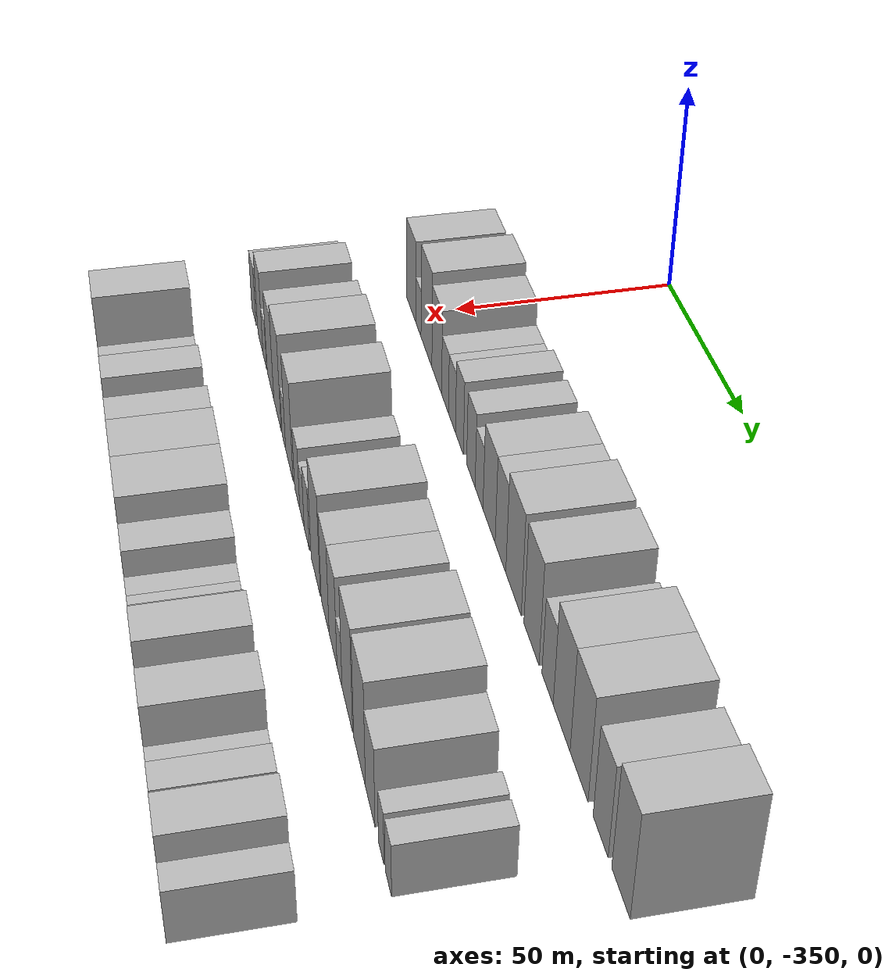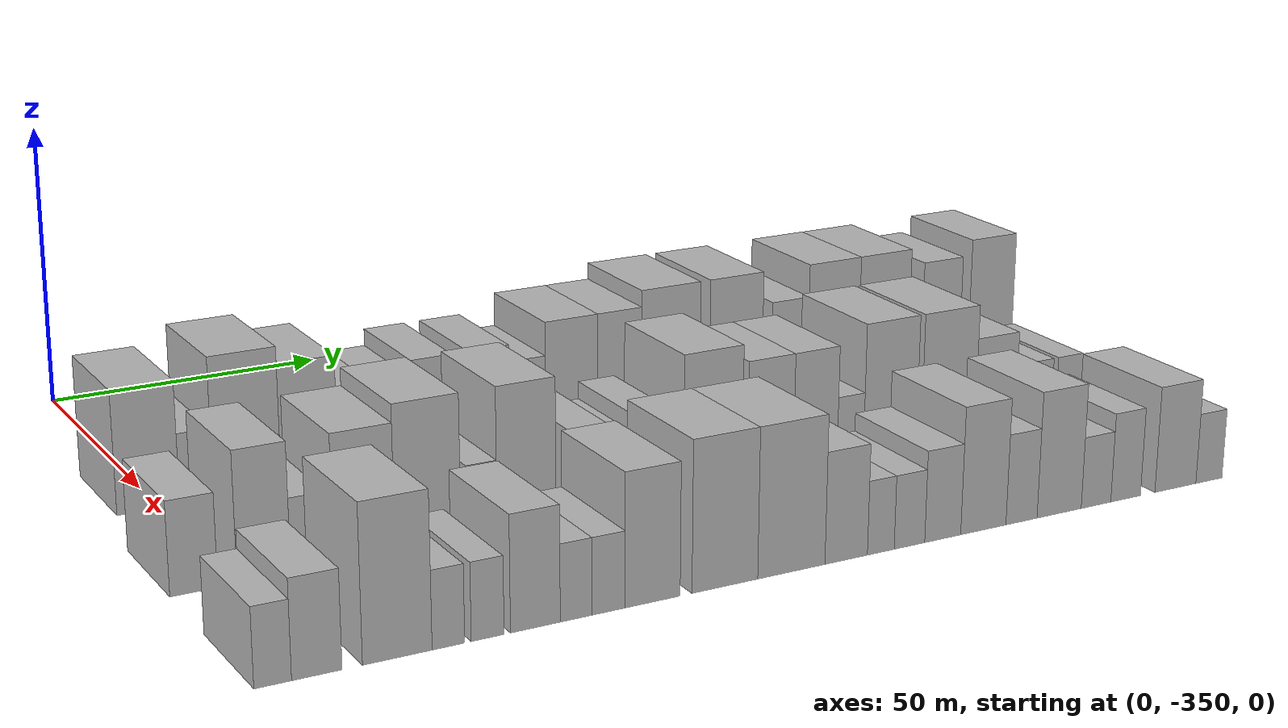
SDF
<sdf version="1.6">
 <world name="default">
  <model name="building_1">
   <static>1</static>
   <pose>50.0000 -351.7952 0 0.000000 0.000000 0.000000</pose>
   <link name="link">
    <pose>0 0 10.50 0 0 0</pose>
    <collision name="collision"><geometry><box><size>20.0000 10.4095 21.0000</size></box></geometry></collision>
    <visual name="visual">
     <cast_shadows>0</cast_shadows>
     <geometry><box><size>20.0000 10.4095 21.0000</size></box></geometry>
     <material>
      <script>
       <uri>model://HANNAS_wall/materials/scripts</uri>
       <uri>model://HANNAS_wall/materials/textures</uri>
       <name>vrc/HANNAS_wall</name>
      </script>
     </material>
    </visual>
   </link>
  </model>
  <model name="building_2">
   <static>1</static>
   <pose>50.0000 -343.7578 0 0.000000 0.000000 0.000000</pose>
   <link name="link">
    <pose>0 0 6.00 0 0 0</pose>
    <collision name="collision"><geometry><box><size>20.0000 5.6654 12.0000</size></box></geometry></collision>
    <visual name="visual">
     <cast_shadows>0</cast_shadows>
     <geometry><box><size>20.0000 5.6654 12.0000</size></box></geometry>
     <material>
      <script>
       <uri>model://HANNAS_wall/materials/scripts</uri>
       <uri>model://HANNAS_wall/materials/textures</uri>
       <name>vrc/HANNAS_wall</name>
      </script>
     </material>
    </visual>
   </link>
  </model>
  <model name="building_3">
   <static>1</static>
   <pose>50.0000 -335.0995 0 0.000000 0.000000 0.000000</pose>
   <link name="link">
    <pose>0 0 12.00 0 0 0</pose>
    <collision name="collision"><geometry><box><size>20.0000 11.6511 24.0000</size></box></geometry></collision>
    <visual name="visual">
     <cast_shadows>0</cast_shadows>
     <geometry><box><size>20.0000 11.6511 24.0000</size></box></geometry>
     <material>
      <script>
       <uri>model://HANNAS_wall/materials/scripts</uri>
       <uri>model://HANNAS_wall/materials/textures</uri>
       <name>vrc/HANNAS_wall</name>
      </script>
     </material>
    </visual>
   </link>
  </model>
  <model name="building_4">
   <static>1</static>
   <pose>50.0000 -324.2634 0 0.000000 0.000000 0.000000</pose>
   <link name="link">
    <pose>0 0 10.50 0 0 0</pose>
    <collision name="collision"><geometry><box><size>20.0000 10.0211 21.0000</size></box></geometry></collision>
    <visual name="visual">
     <cast_shadows>0</cast_shadows>
     <geometry><box><size>20.0000 10.0211 21.0000</size></box></geometry>
     <material>
      <script>
       <uri>model://HANNAS_wall/materials/scripts</uri>
       <uri>model://HANNAS_wall/materials/textures</uri>
       <name>vrc/HANNAS_wall</name>
      </script>
     </material>
    </visual>
   </link>
  </model>
  <model name="building_5">
   <static>1</static>
   <pose>50.0000 -315.8424 0 0.000000 0.000000 0.000000</pose>
   <link name="link">
    <pose>0 0 7.50 0 0 0</pose>
    <collision name="collision"><geometry><box><size>20.0000 6.8208 15.0000</size></box></geometry></collision>
    <visual name="visual">
     <cast_shadows>0</cast_shadows>
     <geometry><box><size>20.0000 6.8208 15.0000</size></box></geometry>
     <material>
      <script>
       <uri>model://HANNAS_wall/materials/scripts</uri>
       <uri>model://HANNAS_wall/materials/textures</uri>
       <name>vrc/HANNAS_wall</name>
      </script>
     </material>
    </visual>
   </link>
  </model>
  <model name="building_6">
   <static>1</static>
   <pose>50.0000 -309.0716 0 0.000000 0.000000 0.000000</pose>
   <link name="link">
    <pose>0 0 7.50 0 0 0</pose>
    <collision name="collision"><geometry><box><size>20.0000 6.7209 15.0000</size></box></geometry></collision>
    <visual name="visual">
     <cast_shadows>0</cast_shadows>
     <geometry><box><size>20.0000 6.7209 15.0000</size></box></geometry>
     <material>
      <script>
       <uri>model://HANNAS_wall/materials/scripts</uri>
       <uri>model://HANNAS_wall/materials/textures</uri>
       <name>vrc/HANNAS_wall</name>
      </script>
     </material>
    </visual>
   </link>
  </model>
  <model name="building_7">
   <static>1</static>
   <pose>50.0000 -301.9825 0 0.000000 0.000000 0.000000</pose>
   <link name="link">
    <pose>0 0 9.00 0 0 0</pose>
    <collision name="collision"><geometry><box><size>20.0000 7.4573 18.0000</size></box></geometry></collision>
    <visual name="visual">
     <cast_shadows>0</cast_shadows>
     <geometry><box><size>20.0000 7.4573 18.0000</size></box></geometry>
     <material>
      <script>
       <uri>model://HANNAS_wall/materials/scripts</uri>
       <uri>model://HANNAS_wall/materials/textures</uri>
       <name>vrc/HANNAS_wall</name>
      </script>
     </material>
    </visual>
   </link>
  </model>
  <model name="building_8">
   <static>1</static>
   <pose>50.0000 -291.4429 0 0.000000 0.000000 0.000000</pose>
   <link name="link">
    <pose>0 0 9.00 0 0 0</pose>
    <collision name="collision"><geometry><box><size>20.0000 7.6219 18.0000</size></box></geometry></collision>
    <visual name="visual">
     <cast_shadows>0</cast_shadows>
     <geometry><box><size>20.0000 7.6219 18.0000</size></box></geometry>
     <material>
      <script>
       <uri>model://HANNAS_wall/materials/scripts</uri>
       <uri>model://HANNAS_wall/materials/textures</uri>
       <name>vrc/HANNAS_wall</name>
      </script>
     </material>
    </visual>
   </link>
  </model>
  <model name="building_9">
   <static>1</static>
   <pose>50.0000 -284.2054 0 0.000000 0.000000 0.000000</pose>
   <link name="link">
    <pose>0 0 7.50 0 0 0</pose>
    <collision name="collision"><geometry><box><size>20.0000 6.8531 15.0000</size></box></geometry></collision>
    <visual name="visual">
     <cast_shadows>0</cast_shadows>
     <geometry><box><size>20.0000 6.8531 15.0000</size></box></geometry>
     <material>
      <script>
       <uri>model://HANNAS_wall/materials/scripts</uri>
       <uri>model://HANNAS_wall/materials/textures</uri>
       <name>vrc/HANNAS_wall</name>
      </script>
     </material>
    </visual>
   </link>
  </model>
  <model name="building_10">
   <static>1</static>
   <pose>50.0000 -275.6748 0 0.000000 0.000000 0.000000</pose>
   <link name="link">
    <pose>0 0 10.50 0 0 0</pose>
    <collision name="collision"><geometry><box><size>20.0000 10.2080 21.0000</size></box></geometry></collision>
    <visual name="visual">
     <cast_shadows>0</cast_shadows>
     <geometry><box><size>20.0000 10.2080 21.0000</size></box></geometry>
     <material>
      <script>
       <uri>model://HANNAS_wall/materials/scripts</uri>
       <uri>model://HANNAS_wall/materials/textures</uri>
       <name>vrc/HANNAS_wall</name>
      </script>
     </material>
    </visual>
   </link>
  </model>
  <model name="building_11">
   <static>1</static>
   <pose>50.0000 -266.2556 0 0.000000 0.000000 0.000000</pose>
   <link name="link">
    <pose>0 0 10.50 0 0 0</pose>
    <collision name="collision"><geometry><box><size>20.0000 8.6305 21.0000</size></box></geometry></collision>
    <visual name="visual">
     <cast_shadows>0</cast_shadows>
     <geometry><box><size>20.0000 8.6305 21.0000</size></box></geometry>
     <material>
      <script>
       <uri>model://HANNAS_wall/materials/scripts</uri>
       <uri>model://HANNAS_wall/materials/textures</uri>
       <name>vrc/HANNAS_wall</name>
      </script>
     </material>
    </visual>
   </link>
  </model>
  <model name="building_12">
   <static>1</static>
   <pose>50.0000 -255.9989 0 0.000000 0.000000 0.000000</pose>
   <link name="link">
    <pose>0 0 12.00 0 0 0</pose>
    <collision name="collision"><geometry><box><size>20.0000 11.8830 24.0000</size></box></geometry></collision>
    <visual name="visual">
     <cast_shadows>0</cast_shadows>
     <geometry><box><size>20.0000 11.8830 24.0000</size></box></geometry>
     <material>
      <script>
       <uri>model://HANNAS_wall/materials/scripts</uri>
       <uri>model://HANNAS_wall/materials/textures</uri>
       <name>vrc/HANNAS_wall</name>
      </script>
     </material>
    </visual>
   </link>
  </model>
  <model name="building_13">
   <static>1</static>
   <pose>50.0000 -242.5805 0 0.000000 0.000000 0.000000</pose>
   <link name="link">
    <pose>0 0 12.00 0 0 0</pose>
    <collision name="collision"><geometry><box><size>20.0000 10.9537 24.0000</size></box></geometry></collision>
    <visual name="visual">
     <cast_shadows>0</cast_shadows>
     <geometry><box><size>20.0000 10.9537 24.0000</size></box></geometry>
     <material>
      <script>
       <uri>model://HANNAS_wall/materials/scripts</uri>
       <uri>model://HANNAS_wall/materials/textures</uri>
       <name>vrc/HANNAS_wall</name>
      </script>
     </material>
    </visual>
   </link>
  </model>
  <model name="building_14">
   <static>1</static>
   <pose>50.0000 -231.2378 0 0.000000 0.000000 0.000000</pose>
   <link name="link">
    <pose>0 0 9.00 0 0 0</pose>
    <collision name="collision"><geometry><box><size>20.0000 7.7319 18.0000</size></box></geometry></collision>
    <visual name="visual">
     <cast_shadows>0</cast_shadows>
     <geometry><box><size>20.0000 7.7319 18.0000</size></box></geometry>
     <material>
      <script>
       <uri>model://HANNAS_wall/materials/scripts</uri>
       <uri>model://HANNAS_wall/materials/textures</uri>
       <name>vrc/HANNAS_wall</name>
      </script>
     </material>
    </visual>
   </link>
  </model>
  <model name="building_15">
   <static>1</static>
   <pose>50.0000 -221.8529 0 0.000000 0.000000 0.000000</pose>
   <link name="link">
    <pose>0 0 12.00 0 0 0</pose>
    <collision name="collision"><geometry><box><size>20.0000 11.0380 24.0000</size></box></geometry></collision>
    <visual name="visual">
     <cast_shadows>0</cast_shadows>
     <geometry><box><size>20.0000 11.0380 24.0000</size></box></geometry>
     <material>
      <script>
       <uri>model://HANNAS_wall/materials/scripts</uri>
       <uri>model://HANNAS_wall/materials/textures</uri>
       <name>vrc/HANNAS_wall</name>
      </script>
     </material>
    </visual>
   </link>
  </model>
  <model name="building_16">
   <static>1</static>
   <pose>50.0000 -210.7647 0 0.000000 0.000000 0.000000</pose>
   <link name="link">
    <pose>0 0 12.00 0 0 0</pose>
    <collision name="collision"><geometry><box><size>20.0000 11.1383 24.0000</size></box></geometry></collision>
    <visual name="visual">
     <cast_shadows>0</cast_shadows>
     <geometry><box><size>20.0000 11.1383 24.0000</size></box></geometry>
     <material>
      <script>
       <uri>model://HANNAS_wall/materials/scripts</uri>
       <uri>model://HANNAS_wall/materials/textures</uri>
       <name>vrc/HANNAS_wall</name>
      </script>
     </material>
    </visual>
   </link>
  </model>
  <model name="building_17">
   <static>1</static>
   <pose>50.0000 -197.8496 0 0.000000 0.000000 0.000000</pose>
   <link name="link">
    <pose>0 0 10.50 0 0 0</pose>
    <collision name="collision"><geometry><box><size>20.0000 8.6920 21.0000</size></box></geometry></collision>
    <visual name="visual">
     <cast_shadows>0</cast_shadows>
     <geometry><box><size>20.0000 8.6920 21.0000</size></box></geometry>
     <material>
      <script>
       <uri>model://HANNAS_wall/materials/scripts</uri>
       <uri>model://HANNAS_wall/materials/textures</uri>
       <name>vrc/HANNAS_wall</name>
      </script>
     </material>
    </visual>
   </link>
  </model>
  <model name="building_18">
   <static>1</static>
   <pose>50.0000 -186.4516 0 0.000000 0.000000 0.000000</pose>
   <link name="link">
    <pose>0 0 12.00 0 0 0</pose>
    <collision name="collision"><geometry><box><size>20.0000 10.1040 24.0000</size></box></geometry></collision>
    <visual name="visual">
     <cast_shadows>0</cast_shadows>
     <geometry><box><size>20.0000 10.1040 24.0000</size></box></geometry>
     <material>
      <script>
       <uri>model://HANNAS_wall/materials/scripts</uri>
       <uri>model://HANNAS_wall/materials/textures</uri>
       <name>vrc/HANNAS_wall</name>
      </script>
     </material>
    </visual>
   </link>
  </model>
  <model name="building_79">
   <static>1</static>
   <pose>85.0000 -356.3077 0 0.000000 0.000000 0.000000</pose>
   <link name="link">
    <pose>0 0 7.50 0 0 0</pose>
    <collision name="collision"><geometry><box><size>20.0000 7.3847 15.0000</size></box></geometry></collision>
    <visual name="visual">
     <cast_shadows>0</cast_shadows>
     <geometry><box><size>20.0000 7.3847 15.0000</size></box></geometry>
     <material>
      <script>
       <uri>model://HANNAS_wall/materials/scripts</uri>
       <uri>model://HANNAS_wall/materials/textures</uri>
       <name>vrc/HANNAS_wall</name>
      </script>
     </material>
    </visual>
   </link>
  </model>
  <model name="building_80">
   <static>1</static>
   <pose>85.0000 -345.3940 0 0.000000 0.000000 0.000000</pose>
   <link name="link">
    <pose>0 0 10.50 0 0 0</pose>
    <collision name="collision"><geometry><box><size>20.0000 8.4427 21.0000</size></box></geometry></collision>
    <visual name="visual">
     <cast_shadows>0</cast_shadows>
     <geometry><box><size>20.0000 8.4427 21.0000</size></box></geometry>
     <material>
      <script>
       <uri>model://HANNAS_wall/materials/scripts</uri>
       <uri>model://HANNAS_wall/materials/textures</uri>
       <name>vrc/HANNAS_wall</name>
      </script>
     </material>
    </visual>
   </link>
  </model>
  <model name="building_81">
   <static>1</static>
   <pose>85.0000 -338.2270 0 0.000000 0.000000 0.000000</pose>
   <link name="link">
    <pose>0 0 6.00 0 0 0</pose>
    <collision name="collision"><geometry><box><size>20.0000 5.8913 12.0000</size></box></geometry></collision>
    <visual name="visual">
     <cast_shadows>0</cast_shadows>
     <geometry><box><size>20.0000 5.8913 12.0000</size></box></geometry>
     <material>
      <script>
       <uri>model://HANNAS_wall/materials/scripts</uri>
       <uri>model://HANNAS_wall/materials/textures</uri>
       <name>vrc/HANNAS_wall</name>
      </script>
     </material>
    </visual>
   </link>
  </model>
  <model name="building_82">
   <static>1</static>
   <pose>85.0000 -329.2513 0 0.000000 0.000000 0.000000</pose>
   <link name="link">
    <pose>0 0 10.50 0 0 0</pose>
    <collision name="collision"><geometry><box><size>20.0000 10.0602 21.0000</size></box></geometry></collision>
    <visual name="visual">
     <cast_shadows>0</cast_shadows>
     <geometry><box><size>20.0000 10.0602 21.0000</size></box></geometry>
     <material>
      <script>
       <uri>model://HANNAS_wall/materials/scripts</uri>
       <uri>model://HANNAS_wall/materials/textures</uri>
       <name>vrc/HANNAS_wall</name>
      </script>
     </material>
    </visual>
   </link>
  </model>
  <model name="building_83">
   <static>1</static>
   <pose>85.0000 -318.6643 0 0.000000 0.000000 0.000000</pose>
   <link name="link">
    <pose>0 0 12.00 0 0 0</pose>
    <collision name="collision"><geometry><box><size>20.0000 11.1138 24.0000</size></box></geometry></collision>
    <visual name="visual">
     <cast_shadows>0</cast_shadows>
     <geometry><box><size>20.0000 11.1138 24.0000</size></box></geometry>
     <material>
      <script>
       <uri>model://HANNAS_wall/materials/scripts</uri>
       <uri>model://HANNAS_wall/materials/textures</uri>
       <name>vrc/HANNAS_wall</name>
      </script>
     </material>
    </visual>
   </link>
  </model>
  <model name="building_84">
   <static>1</static>
   <pose>85.0000 -309.5032 0 0.000000 0.000000 0.000000</pose>
   <link name="link">
    <pose>0 0 6.00 0 0 0</pose>
    <collision name="collision"><geometry><box><size>20.0000 5.2084 12.0000</size></box></geometry></collision>
    <visual name="visual">
     <cast_shadows>0</cast_shadows>
     <geometry><box><size>20.0000 5.2084 12.0000</size></box></geometry>
     <material>
      <script>
       <uri>model://HANNAS_wall/materials/scripts</uri>
       <uri>model://HANNAS_wall/materials/textures</uri>
       <name>vrc/HANNAS_wall</name>
      </script>
     </material>
    </visual>
   </link>
  </model>
  <model name="building_85">
   <static>1</static>
   <pose>85.0000 -301.7518 0 0.000000 0.000000 0.000000</pose>
   <link name="link">
    <pose>0 0 12.00 0 0 0</pose>
    <collision name="collision"><geometry><box><size>20.0000 10.2945 24.0000</size></box></geometry></collision>
    <visual name="visual">
     <cast_shadows>0</cast_shadows>
     <geometry><box><size>20.0000 10.2945 24.0000</size></box></geometry>
     <material>
      <script>
       <uri>model://HANNAS_wall/materials/scripts</uri>
       <uri>model://HANNAS_wall/materials/textures</uri>
       <name>vrc/HANNAS_wall</name>
      </script>
     </material>
    </visual>
   </link>
  </model>
  <model name="building_86">
   <static>1</static>
   <pose>85.0000 -291.1583 0 0.000000 0.000000 0.000000</pose>
   <link name="link">
    <pose>0 0 7.50 0 0 0</pose>
    <collision name="collision"><geometry><box><size>20.0000 6.8925 15.0000</size></box></geometry></collision>
    <visual name="visual">
     <cast_shadows>0</cast_shadows>
     <geometry><box><size>20.0000 6.8925 15.0000</size></box></geometry>
     <material>
      <script>
       <uri>model://HANNAS_wall/materials/scripts</uri>
       <uri>model://HANNAS_wall/materials/textures</uri>
       <name>vrc/HANNAS_wall</name>
      </script>
     </material>
    </visual>
   </link>
  </model>
  <model name="building_87">
   <static>1</static>
   <pose>85.0000 -284.9317 0 0.000000 0.000000 0.000000</pose>
   <link name="link">
    <pose>0 0 6.00 0 0 0</pose>
    <collision name="collision"><geometry><box><size>20.0000 5.5606 12.0000</size></box></geometry></collision>
    <visual name="visual">
     <cast_shadows>0</cast_shadows>
     <geometry><box><size>20.0000 5.5606 12.0000</size></box></geometry>
     <material>
      <script>
       <uri>model://HANNAS_wall/materials/scripts</uri>
       <uri>model://HANNAS_wall/materials/textures</uri>
       <name>vrc/HANNAS_wall</name>
      </script>
     </material>
    </visual>
   </link>
  </model>
  <model name="building_88">
   <static>1</static>
   <pose>85.0000 -278.8110 0 0.000000 0.000000 0.000000</pose>
   <link name="link">
    <pose>0 0 7.50 0 0 0</pose>
    <collision name="collision"><geometry><box><size>20.0000 6.6809 15.0000</size></box></geometry></collision>
    <visual name="visual">
     <cast_shadows>0</cast_shadows>
     <geometry><box><size>20.0000 6.6809 15.0000</size></box></geometry>
     <material>
      <script>
       <uri>model://HANNAS_wall/materials/scripts</uri>
       <uri>model://HANNAS_wall/materials/textures</uri>
       <name>vrc/HANNAS_wall</name>
      </script>
     </material>
    </visual>
   </link>
  </model>
  <model name="building_89">
   <static>1</static>
   <pose>85.0000 -267.9307 0 0.000000 0.000000 0.000000</pose>
   <link name="link">
    <pose>0 0 12.00 0 0 0</pose>
    <collision name="collision"><geometry><box><size>20.0000 11.0797 24.0000</size></box></geometry></collision>
    <visual name="visual">
     <cast_shadows>0</cast_shadows>
     <geometry><box><size>20.0000 11.0797 24.0000</size></box></geometry>
     <material>
      <script>
       <uri>model://HANNAS_wall/materials/scripts</uri>
       <uri>model://HANNAS_wall/materials/textures</uri>
       <name>vrc/HANNAS_wall</name>
      </script>
     </material>
    </visual>
   </link>
  </model>
  <model name="building_90">
   <static>1</static>
   <pose>85.0000 -256.9247 0 0.000000 0.000000 0.000000</pose>
   <link name="link">
    <pose>0 0 10.50 0 0 0</pose>
    <collision name="collision"><geometry><box><size>20.0000 8.9323 21.0000</size></box></geometry></collision>
    <visual name="visual">
     <cast_shadows>0</cast_shadows>
     <geometry><box><size>20.0000 8.9323 21.0000</size></box></geometry>
     <material>
      <script>
       <uri>model://HANNAS_wall/materials/scripts</uri>
       <uri>model://HANNAS_wall/materials/textures</uri>
       <name>vrc/HANNAS_wall</name>
      </script>
     </material>
    </visual>
   </link>
  </model>
  <model name="building_91">
   <static>1</static>
   <pose>85.0000 -248.1477 0 0.000000 0.000000 0.000000</pose>
   <link name="link">
    <pose>0 0 10.50 0 0 0</pose>
    <collision name="collision"><geometry><box><size>20.0000 8.6215 21.0000</size></box></geometry></collision>
    <visual name="visual">
     <cast_shadows>0</cast_shadows>
     <geometry><box><size>20.0000 8.6215 21.0000</size></box></geometry>
     <material>
      <script>
       <uri>model://HANNAS_wall/materials/scripts</uri>
       <uri>model://HANNAS_wall/materials/textures</uri>
       <name>vrc/HANNAS_wall</name>
      </script>
     </material>
    </visual>
   </link>
  </model>
  <model name="building_92">
   <static>1</static>
   <pose>85.0000 -241.2000 0 0.000000 0.000000 0.000000</pose>
   <link name="link">
    <pose>0 0 6.00 0 0 0</pose>
    <collision name="collision"><geometry><box><size>20.0000 5.2738 12.0000</size></box></geometry></collision>
    <visual name="visual">
     <cast_shadows>0</cast_shadows>
     <geometry><box><size>20.0000 5.2738 12.0000</size></box></geometry>
     <material>
      <script>
       <uri>model://HANNAS_wall/materials/scripts</uri>
       <uri>model://HANNAS_wall/materials/textures</uri>
       <name>vrc/HANNAS_wall</name>
      </script>
     </material>
    </visual>
   </link>
  </model>
  <model name="building_93">
   <static>1</static>
   <pose>85.0000 -233.1885 0 0.000000 0.000000 0.000000</pose>
   <link name="link">
    <pose>0 0 12.00 0 0 0</pose>
    <collision name="collision"><geometry><box><size>20.0000 10.7492 24.0000</size></box></geometry></collision>
    <visual name="visual">
     <cast_shadows>0</cast_shadows>
     <geometry><box><size>20.0000 10.7492 24.0000</size></box></geometry>
     <material>
      <script>
       <uri>model://HANNAS_wall/materials/scripts</uri>
       <uri>model://HANNAS_wall/materials/textures</uri>
       <name>vrc/HANNAS_wall</name>
      </script>
     </material>
    </visual>
   </link>
  </model>
  <model name="building_94">
   <static>1</static>
   <pose>85.0000 -221.1884 0 0.000000 0.000000 0.000000</pose>
   <link name="link">
    <pose>0 0 12.00 0 0 0</pose>
    <collision name="collision"><geometry><box><size>20.0000 11.2509 24.0000</size></box></geometry></collision>
    <visual name="visual">
     <cast_shadows>0</cast_shadows>
     <geometry><box><size>20.0000 11.2509 24.0000</size></box></geometry>
     <material>
      <script>
       <uri>model://HANNAS_wall/materials/scripts</uri>
       <uri>model://HANNAS_wall/materials/textures</uri>
       <name>vrc/HANNAS_wall</name>
      </script>
     </material>
    </visual>
   </link>
  </model>
  <model name="building_95">
   <static>1</static>
   <pose>85.0000 -211.2373 0 0.000000 0.000000 0.000000</pose>
   <link name="link">
    <pose>0 0 9.00 0 0 0</pose>
    <collision name="collision"><geometry><box><size>20.0000 8.6513 18.0000</size></box></geometry></collision>
    <visual name="visual">
     <cast_shadows>0</cast_shadows>
     <geometry><box><size>20.0000 8.6513 18.0000</size></box></geometry>
     <material>
      <script>
       <uri>model://HANNAS_wall/materials/scripts</uri>
       <uri>model://HANNAS_wall/materials/textures</uri>
       <name>vrc/HANNAS_wall</name>
      </script>
     </material>
    </visual>
   </link>
  </model>
  <model name="building_96">
   <static>1</static>
   <pose>85.0000 -201.5015 0 0.000000 0.000000 0.000000</pose>
   <link name="link">
    <pose>0 0 6.00 0 0 0</pose>
    <collision name="collision"><geometry><box><size>20.0000 4.8203 12.0000</size></box></geometry></collision>
    <visual name="visual">
     <cast_shadows>0</cast_shadows>
     <geometry><box><size>20.0000 4.8203 12.0000</size></box></geometry>
     <material>
      <script>
       <uri>model://HANNAS_wall/materials/scripts</uri>
       <uri>model://HANNAS_wall/materials/textures</uri>
       <name>vrc/HANNAS_wall</name>
      </script>
     </material>
    </visual>
   </link>
  </model>
  <model name="building_97">
   <static>1</static>
   <pose>85.0000 -195.4297 0 0.000000 0.000000 0.000000</pose>
   <link name="link">
    <pose>0 0 6.00 0 0 0</pose>
    <collision name="collision"><geometry><box><size>20.0000 5.3233 12.0000</size></box></geometry></collision>
    <visual name="visual">
     <cast_shadows>0</cast_shadows>
     <geometry><box><size>20.0000 5.3233 12.0000</size></box></geometry>
     <material>
      <script>
       <uri>model://HANNAS_wall/materials/scripts</uri>
       <uri>model://HANNAS_wall/materials/textures</uri>
       <name>vrc/HANNAS_wall</name>
      </script>
     </material>
    </visual>
   </link>
  </model>
  <model name="building_160">
   <static>1</static>
   <pose>120.0000 -357.2973 0 0.000000 0.000000 0.000000</pose>
   <link name="link">
    <pose>0 0 6.00 0 0 0</pose>
    <collision name="collision"><geometry><box><size>20.0000 5.4053 12.0000</size></box></geometry></collision>
    <visual name="visual">
     <cast_shadows>0</cast_shadows>
     <geometry><box><size>20.0000 5.4053 12.0000</size></box></geometry>
     <material>
      <script>
       <uri>model://HANNAS_wall/materials/scripts</uri>
       <uri>model://HANNAS_wall/materials/textures</uri>
       <name>vrc/HANNAS_wall</name>
      </script>
     </material>
    </visual>
   </link>
  </model>
  <model name="building_161">
   <static>1</static>
   <pose>120.0000 -350.9241 0 0.000000 0.000000 0.000000</pose>
   <link name="link">
    <pose>0 0 7.50 0 0 0</pose>
    <collision name="collision"><geometry><box><size>20.0000 7.3411 15.0000</size></box></geometry></collision>
    <visual name="visual">
     <cast_shadows>0</cast_shadows>
     <geometry><box><size>20.0000 7.3411 15.0000</size></box></geometry>
     <material>
      <script>
       <uri>model://HANNAS_wall/materials/scripts</uri>
       <uri>model://HANNAS_wall/materials/textures</uri>
       <name>vrc/HANNAS_wall</name>
      </script>
     </material>
    </visual>
   </link>
  </model>
  <model name="building_162">
   <static>1</static>
   <pose>120.0000 -339.0225 0 0.000000 0.000000 0.000000</pose>
   <link name="link">
    <pose>0 0 12.00 0 0 0</pose>
    <collision name="collision"><geometry><box><size>20.0000 10.4622 24.0000</size></box></geometry></collision>
    <visual name="visual">
     <cast_shadows>0</cast_shadows>
     <geometry><box><size>20.0000 10.4622 24.0000</size></box></geometry>
     <material>
      <script>
       <uri>model://HANNAS_wall/materials/scripts</uri>
       <uri>model://HANNAS_wall/materials/textures</uri>
       <name>vrc/HANNAS_wall</name>
      </script>
     </material>
    </visual>
   </link>
  </model>
  <model name="building_163">
   <static>1</static>
   <pose>120.0000 -331.2939 0 0.000000 0.000000 0.000000</pose>
   <link name="link">
    <pose>0 0 6.00 0 0 0</pose>
    <collision name="collision"><geometry><box><size>20.0000 4.9951 12.0000</size></box></geometry></collision>
    <visual name="visual">
     <cast_shadows>0</cast_shadows>
     <geometry><box><size>20.0000 4.9951 12.0000</size></box></geometry>
     <material>
      <script>
       <uri>model://HANNAS_wall/materials/scripts</uri>
       <uri>model://HANNAS_wall/materials/textures</uri>
       <name>vrc/HANNAS_wall</name>
      </script>
     </material>
    </visual>
   </link>
  </model>
  <model name="building_164">
   <static>1</static>
   <pose>120.0000 -325.2383 0 0.000000 0.000000 0.000000</pose>
   <link name="link">
    <pose>0 0 6.00 0 0 0</pose>
    <collision name="collision"><geometry><box><size>20.0000 5.1161 12.0000</size></box></geometry></collision>
    <visual name="visual">
     <cast_shadows>0</cast_shadows>
     <geometry><box><size>20.0000 5.1161 12.0000</size></box></geometry>
     <material>
      <script>
       <uri>model://HANNAS_wall/materials/scripts</uri>
       <uri>model://HANNAS_wall/materials/textures</uri>
       <name>vrc/HANNAS_wall</name>
      </script>
     </material>
    </visual>
   </link>
  </model>
  <model name="building_165">
   <static>1</static>
   <pose>120.0000 -317.7293 0 0.000000 0.000000 0.000000</pose>
   <link name="link">
    <pose>0 0 9.00 0 0 0</pose>
    <collision name="collision"><geometry><box><size>20.0000 7.9020 18.0000</size></box></geometry></collision>
    <visual name="visual">
     <cast_shadows>0</cast_shadows>
     <geometry><box><size>20.0000 7.9020 18.0000</size></box></geometry>
     <material>
      <script>
       <uri>model://HANNAS_wall/materials/scripts</uri>
       <uri>model://HANNAS_wall/materials/textures</uri>
       <name>vrc/HANNAS_wall</name>
      </script>
     </material>
    </visual>
   </link>
  </model>
  <model name="building_166">
   <static>1</static>
   <pose>120.0000 -311.2063 0 0.000000 0.000000 0.000000</pose>
   <link name="link">
    <pose>0 0 6.00 0 0 0</pose>
    <collision name="collision"><geometry><box><size>20.0000 5.1440 12.0000</size></box></geometry></collision>
    <visual name="visual">
     <cast_shadows>0</cast_shadows>
     <geometry><box><size>20.0000 5.1440 12.0000</size></box></geometry>
     <material>
      <script>
       <uri>model://HANNAS_wall/materials/scripts</uri>
       <uri>model://HANNAS_wall/materials/textures</uri>
       <name>vrc/HANNAS_wall</name>
      </script>
     </material>
    </visual>
   </link>
  </model>
  <model name="building_167">
   <static>1</static>
   <pose>120.0000 -305.9416 0 0.000000 0.000000 0.000000</pose>
   <link name="link">
    <pose>0 0 6.00 0 0 0</pose>
    <collision name="collision"><geometry><box><size>20.0000 5.3855 12.0000</size></box></geometry></collision>
    <visual name="visual">
     <cast_shadows>0</cast_shadows>
     <geometry><box><size>20.0000 5.3855 12.0000</size></box></geometry>
     <material>
      <script>
       <uri>model://HANNAS_wall/materials/scripts</uri>
       <uri>model://HANNAS_wall/materials/textures</uri>
       <name>vrc/HANNAS_wall</name>
      </script>
     </material>
    </visual>
   </link>
  </model>
  <model name="building_168">
   <static>1</static>
   <pose>120.0000 -298.6618 0 0.000000 0.000000 0.000000</pose>
   <link name="link">
    <pose>0 0 10.50 0 0 0</pose>
    <collision name="collision"><geometry><box><size>20.0000 9.1742 21.0000</size></box></geometry></collision>
    <visual name="visual">
     <cast_shadows>0</cast_shadows>
     <geometry><box><size>20.0000 9.1742 21.0000</size></box></geometry>
     <material>
      <script>
       <uri>model://HANNAS_wall/materials/scripts</uri>
       <uri>model://HANNAS_wall/materials/textures</uri>
       <name>vrc/HANNAS_wall</name>
      </script>
     </material>
    </visual>
   </link>
  </model>
  <model name="building_169">
   <static>1</static>
   <pose>120.0000 -286.4285 0 0.000000 0.000000 0.000000</pose>
   <link name="link">
    <pose>0 0 12.00 0 0 0</pose>
    <collision name="collision"><geometry><box><size>20.0000 11.2923 24.0000</size></box></geometry></collision>
    <visual name="visual">
     <cast_shadows>0</cast_shadows>
     <geometry><box><size>20.0000 11.2923 24.0000</size></box></geometry>
     <material>
      <script>
       <uri>model://HANNAS_wall/materials/scripts</uri>
       <uri>model://HANNAS_wall/materials/textures</uri>
       <name>vrc/HANNAS_wall</name>
      </script>
     </material>
    </visual>
   </link>
  </model>
  <model name="building_170">
   <static>1</static>
   <pose>120.0000 -274.8411 0 0.000000 0.000000 0.000000</pose>
   <link name="link">
    <pose>0 0 12.00 0 0 0</pose>
    <collision name="collision"><geometry><box><size>20.0000 11.8826 24.0000</size></box></geometry></collision>
    <visual name="visual">
     <cast_shadows>0</cast_shadows>
     <geometry><box><size>20.0000 11.8826 24.0000</size></box></geometry>
     <material>
      <script>
       <uri>model://HANNAS_wall/materials/scripts</uri>
       <uri>model://HANNAS_wall/materials/textures</uri>
       <name>vrc/HANNAS_wall</name>
      </script>
     </material>
    </visual>
   </link>
  </model>
  <model name="building_171">
   <static>1</static>
   <pose>120.0000 -265.0604 0 0.000000 0.000000 0.000000</pose>
   <link name="link">
    <pose>0 0 9.00 0 0 0</pose>
    <collision name="collision"><geometry><box><size>20.0000 7.6789 18.0000</size></box></geometry></collision>
    <visual name="visual">
     <cast_shadows>0</cast_shadows>
     <geometry><box><size>20.0000 7.6789 18.0000</size></box></geometry>
     <material>
      <script>
       <uri>model://HANNAS_wall/materials/scripts</uri>
       <uri>model://HANNAS_wall/materials/textures</uri>
       <name>vrc/HANNAS_wall</name>
      </script>
     </material>
    </visual>
   </link>
  </model>
  <model name="building_172">
   <static>1</static>
   <pose>120.0000 -258.7577 0 0.000000 0.000000 0.000000</pose>
   <link name="link">
    <pose>0 0 6.00 0 0 0</pose>
    <collision name="collision"><geometry><box><size>20.0000 4.9263 12.0000</size></box></geometry></collision>
    <visual name="visual">
     <cast_shadows>0</cast_shadows>
     <geometry><box><size>20.0000 4.9263 12.0000</size></box></geometry>
     <material>
      <script>
       <uri>model://HANNAS_wall/materials/scripts</uri>
       <uri>model://HANNAS_wall/materials/textures</uri>
       <name>vrc/HANNAS_wall</name>
      </script>
     </material>
    </visual>
   </link>
  </model>
  <model name="building_173">
   <static>1</static>
   <pose>120.0000 -253.4525 0 0.000000 0.000000 0.000000</pose>
   <link name="link">
    <pose>0 0 6.00 0 0 0</pose>
    <collision name="collision"><geometry><box><size>20.0000 5.6842 12.0000</size></box></geometry></collision>
    <visual name="visual">
     <cast_shadows>0</cast_shadows>
     <geometry><box><size>20.0000 5.6842 12.0000</size></box></geometry>
     <material>
      <script>
       <uri>model://HANNAS_wall/materials/scripts</uri>
       <uri>model://HANNAS_wall/materials/textures</uri>
       <name>vrc/HANNAS_wall</name>
      </script>
     </material>
    </visual>
   </link>
  </model>
  <model name="building_174">
   <static>1</static>
   <pose>120.0000 -247.2128 0 0.000000 0.000000 0.000000</pose>
   <link name="link">
    <pose>0 0 7.50 0 0 0</pose>
    <collision name="collision"><geometry><box><size>20.0000 6.7952 15.0000</size></box></geometry></collision>
    <visual name="visual">
     <cast_shadows>0</cast_shadows>
     <geometry><box><size>20.0000 6.7952 15.0000</size></box></geometry>
     <material>
      <script>
       <uri>model://HANNAS_wall/materials/scripts</uri>
       <uri>model://HANNAS_wall/materials/textures</uri>
       <name>vrc/HANNAS_wall</name>
      </script>
     </material>
    </visual>
   </link>
  </model>
  <model name="building_175">
   <static>1</static>
   <pose>120.0000 -239.4648 0 0.000000 0.000000 0.000000</pose>
   <link name="link">
    <pose>0 0 10.50 0 0 0</pose>
    <collision name="collision"><geometry><box><size>20.0000 8.7009 21.0000</size></box></geometry></collision>
    <visual name="visual">
     <cast_shadows>0</cast_shadows>
     <geometry><box><size>20.0000 8.7009 21.0000</size></box></geometry>
     <material>
      <script>
       <uri>model://HANNAS_wall/materials/scripts</uri>
       <uri>model://HANNAS_wall/materials/textures</uri>
       <name>vrc/HANNAS_wall</name>
      </script>
     </material>
    </visual>
   </link>
  </model>
  <model name="building_176">
   <static>1</static>
   <pose>120.0000 -232.0673 0 0.000000 0.000000 0.000000</pose>
   <link name="link">
    <pose>0 0 7.50 0 0 0</pose>
    <collision name="collision"><geometry><box><size>20.0000 6.0940 15.0000</size></box></geometry></collision>
    <visual name="visual">
     <cast_shadows>0</cast_shadows>
     <geometry><box><size>20.0000 6.0940 15.0000</size></box></geometry>
     <material>
      <script>
       <uri>model://HANNAS_wall/materials/scripts</uri>
       <uri>model://HANNAS_wall/materials/textures</uri>
       <name>vrc/HANNAS_wall</name>
      </script>
     </material>
    </visual>
   </link>
  </model>
  <model name="building_177">
   <static>1</static>
   <pose>120.0000 -224.6235 0 0.000000 0.000000 0.000000</pose>
   <link name="link">
    <pose>0 0 10.50 0 0 0</pose>
    <collision name="collision"><geometry><box><size>20.0000 8.7936 21.0000</size></box></geometry></collision>
    <visual name="visual">
     <cast_shadows>0</cast_shadows>
     <geometry><box><size>20.0000 8.7936 21.0000</size></box></geometry>
     <material>
      <script>
       <uri>model://HANNAS_wall/materials/scripts</uri>
       <uri>model://HANNAS_wall/materials/textures</uri>
       <name>vrc/HANNAS_wall</name>
      </script>
     </material>
    </visual>
   </link>
  </model>
  <model name="building_178">
   <static>1</static>
   <pose>120.0000 -217.2288 0 0.000000 0.000000 0.000000</pose>
   <link name="link">
    <pose>0 0 6.00 0 0 0</pose>
    <collision name="collision"><geometry><box><size>20.0000 5.9958 12.0000</size></box></geometry></collision>
    <visual name="visual">
     <cast_shadows>0</cast_shadows>
     <geometry><box><size>20.0000 5.9958 12.0000</size></box></geometry>
     <material>
      <script>
       <uri>model://HANNAS_wall/materials/scripts</uri>
       <uri>model://HANNAS_wall/materials/textures</uri>
       <name>vrc/HANNAS_wall</name>
      </script>
     </material>
    </visual>
   </link>
  </model>
  <model name="building_179">
   <static>1</static>
   <pose>120.0000 -211.1866 0 0.000000 0.000000 0.000000</pose>
   <link name="link">
    <pose>0 0 7.50 0 0 0</pose>
    <collision name="collision"><geometry><box><size>20.0000 6.0885 15.0000</size></box></geometry></collision>
    <visual name="visual">
     <cast_shadows>0</cast_shadows>
     <geometry><box><size>20.0000 6.0885 15.0000</size></box></geometry>
     <material>
      <script>
       <uri>model://HANNAS_wall/materials/scripts</uri>
       <uri>model://HANNAS_wall/materials/textures</uri>
       <name>vrc/HANNAS_wall</name>
      </script>
     </material>
    </visual>
   </link>
  </model>
  <model name="building_180">
   <static>1</static>
   <pose>120.0000 -200.8357 0 0.000000 0.000000 0.000000</pose>
   <link name="link">
    <pose>0 0 9.00 0 0 0</pose>
    <collision name="collision"><geometry><box><size>20.0000 8.6132 18.0000</size></box></geometry></collision>
    <visual name="visual">
     <cast_shadows>0</cast_shadows>
     <geometry><box><size>20.0000 8.6132 18.0000</size></box></geometry>
     <material>
      <script>
       <uri>model://HANNAS_wall/materials/scripts</uri>
       <uri>model://HANNAS_wall/materials/textures</uri>
       <name>vrc/HANNAS_wall</name>
      </script>
     </material>
    </visual>
   </link>
  </model>
  <model name="building_181">
   <static>1</static>
   <pose>120.0000 -193.7522 0 0.000000 0.000000 0.000000</pose>
   <link name="link">
    <pose>0 0 6.00 0 0 0</pose>
    <collision name="collision"><geometry><box><size>20.0000 5.5539 12.0000</size></box></geometry></collision>
    <visual name="visual">
     <cast_shadows>0</cast_shadows>
     <geometry><box><size>20.0000 5.5539 12.0000</size></box></geometry>
     <material>
      <script>
       <uri>model://HANNAS_wall/materials/scripts</uri>
       <uri>model://HANNAS_wall/materials/textures</uri>
       <name>vrc/HANNAS_wall</name>
      </script>
     </material>
    </visual>
   </link>
  </model>
 </world>
</sdf>
